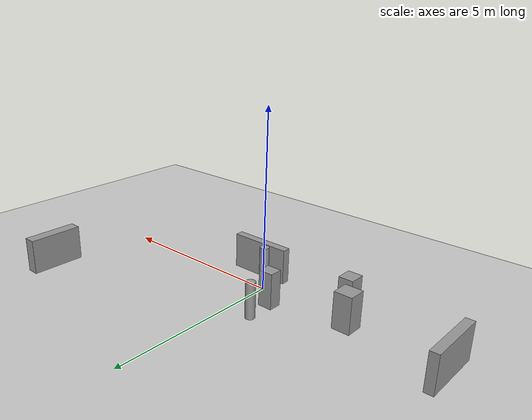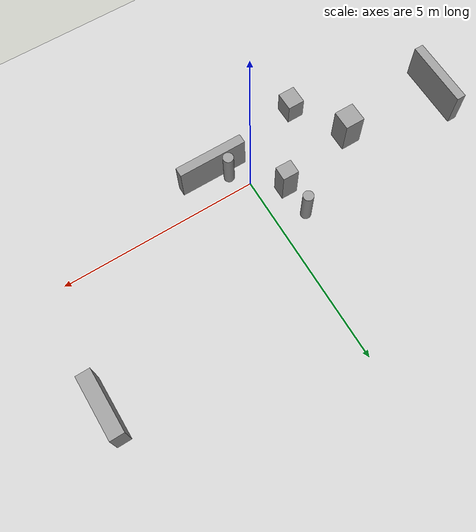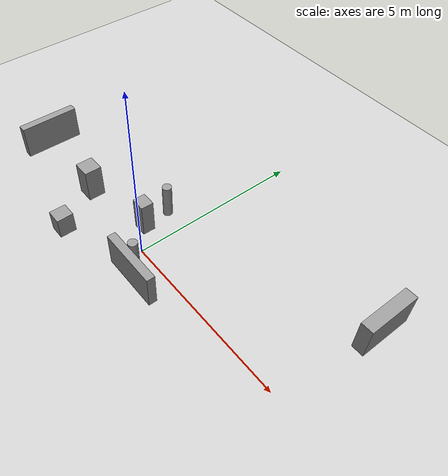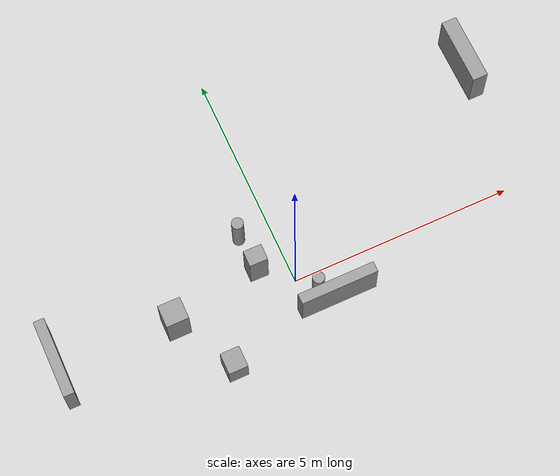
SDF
<sdf version="1.6">
 <world name="default">
  <model name="ground_plane">
   <static>1</static>
   <link name="link">
    <collision name="collision">
     <geometry><plane><normal>0 0 1</normal><size>100 100</size></plane></geometry>
     <surface><friction><ode><mu>100</mu><mu2>50</mu2></ode></friction></surface>
    </collision>
    <visual name="visual">
     <cast_shadows>0</cast_shadows>
     <geometry><plane><normal>0 0 1</normal><size>100 100</size></plane></geometry>
     <material>
      <script><uri>file://media/materials/scripts/gazebo.material</uri><name>Gazebo/Grey</name></script>
     </material>
    </visual>
   </link>
  </model>
  <model name="cma_armario">
   <link name="link_0">
    <pose>1.32157 0.885178 0.5 0 -0 0</pose>
    <inertial>
     <mass>0.402376</mass>
     <inertia>
      <ixx>0.0353686</ixx>
      <ixy>0</ixy>
      <ixz>0</ixz>
      <iyy>0.132616</iyy>
      <iyz>0</iyz>
      <izz>0.100922</izz>
     </inertia>
    </inertial>
    <visual name="visual">
     <geometry><box><size>1.71877 0.234069 1</size></box></geometry>
     <material>
      <lighting>1</lighting>
      <script><uri>file://media/materials/scripts/gazebo.material</uri><name>Gazebo/Grey</name></script>
      <ambient>0.3 0.3 0.3 1</ambient>
      <diffuse>0.7 0.7 0.7 1</diffuse>
      <specular>0.01 0.01 0.01 1</specular>
      <emissive>0 0 0 1</emissive>
     </material>
    </visual>
    <collision name="collision">
     <geometry><box><size>1.71877 0.234069 1</size></box></geometry>
     <surface>
      <friction>
       <ode><mu>1</mu><mu2>1</mu2><fdir1>0 0 0</fdir1><slip1>0</slip1><slip2>0</slip2></ode>
       <torsional>
        <coefficient>1</coefficient>
        <patch_radius>0</patch_radius>
        <surface_radius>0</surface_radius>
        <use_patch_radius>1</use_patch_radius>
        <ode><slip>0</slip></ode>
       </torsional>
      </friction>
      <bounce><restitution_coefficient>0</restitution_coefficient><threshold>1e+06</threshold></bounce>
      <contact>
       <collide_without_contact>0</collide_without_contact>
       <collide_without_contact_bitmask>1</collide_without_contact_bitmask>
       <collide_bitmask>1</collide_bitmask>
       <ode>
        <soft_cfm>0</soft_cfm>
        <soft_erp>0.2</soft_erp>
        <kp>1e+13</kp>
        <kd>1</kd>
        <max_vel>0.01</max_vel>
        <min_depth>0</min_depth>
       </ode>
       <bullet>
        <split_impulse>1</split_impulse>
        <split_impulse_penetration_threshold>-0.01</split_impulse_penetration_threshold>
        <soft_cfm>0</soft_cfm>
        <soft_erp>0.2</soft_erp>
        <kp>1e+13</kp>
        <kd>1</kd>
       </bullet>
      </contact>
     </surface>
    </collision>
   </link>
   <static>0</static>
   <pose>-0.670284 -1.58228 1e-06 -2e-06 -0 -0.000244</pose>
  </model>
  <model name="cma_lixo">
   <link name="link_1">
    <pose>0.882962 1.81586 0.5 0 -0 0</pose>
    <inertial>
     <mass>0.0687644</mass>
     <inertia>
      <ixx>0.00602588</ixx>
      <ixy>0</ixy>
      <ixz>0</ixz>
      <iyy>0.00602588</iyy>
      <iyz>0</iyz>
      <izz>0.000591068</izz>
     </inertia>
    </inertial>
    <visual name="visual">
     <geometry><cylinder><radius>0.131112</radius><length>1</length></cylinder></geometry>
     <material>
      <lighting>1</lighting>
      <script><uri>file://media/materials/scripts/gazebo.material</uri><name>Gazebo/Grey</name></script>
      <ambient>0.3 0.3 0.3 1</ambient>
      <diffuse>0.7 0.7 0.7 1</diffuse>
      <specular>0.01 0.01 0.01 1</specular>
      <emissive>0 0 0 1</emissive>
     </material>
    </visual>
    <collision name="collision">
     <geometry><cylinder><radius>0.131112</radius><length>1</length></cylinder></geometry>
     <surface>
      <friction>
       <ode><mu>1</mu><mu2>1</mu2><fdir1>0 0 0</fdir1><slip1>0</slip1><slip2>0</slip2></ode>
       <torsional>
        <coefficient>1</coefficient>
        <patch_radius>0</patch_radius>
        <surface_radius>0</surface_radius>
        <use_patch_radius>1</use_patch_radius>
        <ode><slip>0</slip></ode>
       </torsional>
      </friction>
      <bounce><restitution_coefficient>0</restitution_coefficient><threshold>1e+06</threshold></bounce>
      <contact>
       <collide_without_contact>0</collide_without_contact>
       <collide_without_contact_bitmask>1</collide_without_contact_bitmask>
       <collide_bitmask>1</collide_bitmask>
       <ode>
        <soft_cfm>0</soft_cfm>
        <soft_erp>0.2</soft_erp>
        <kp>1e+13</kp>
        <kd>1</kd>
        <max_vel>0.01</max_vel>
        <min_depth>0</min_depth>
       </ode>
       <bullet>
        <split_impulse>1</split_impulse>
        <split_impulse_penetration_threshold>-0.01</split_impulse_penetration_threshold>
        <soft_cfm>0</soft_cfm>
        <soft_erp>0.2</soft_erp>
        <kp>1e+13</kp>
        <kd>1</kd>
       </bullet>
      </contact>
     </surface>
    </collision>
   </link>
   <static>0</static>
   <pose>-1.35785 -1.52544 -5e-06 0 0 -0.543097</pose>
  </model>
  <model name="cma_lixo_0">
   <link name="link_1">
    <pose>0.882962 1.81586 0.5 0 -0 0</pose>
    <inertial>
     <mass>0.0687644</mass>
     <inertia>
      <ixx>0.00602588</ixx>
      <ixy>0</ixy>
      <ixz>0</ixz>
      <iyy>0.00602588</iyy>
      <iyz>0</iyz>
      <izz>0.000591068</izz>
     </inertia>
    </inertial>
    <visual name="visual">
     <geometry><cylinder><radius>0.131112</radius><length>1</length></cylinder></geometry>
     <material>
      <lighting>1</lighting>
      <script><uri>file://media/materials/scripts/gazebo.material</uri><name>Gazebo/Grey</name></script>
      <ambient>0.3 0.3 0.3 1</ambient>
      <diffuse>0.7 0.7 0.7 1</diffuse>
      <specular>0.01 0.01 0.01 1</specular>
      <emissive>0 0 0 1</emissive>
     </material>
    </visual>
    <collision name="collision">
     <geometry><cylinder><radius>0.131112</radius><length>1</length></cylinder></geometry>
     <surface>
      <friction>
       <ode><mu>1</mu><mu2>1</mu2><fdir1>0 0 0</fdir1><slip1>0</slip1><slip2>0</slip2></ode>
       <torsional>
        <coefficient>1</coefficient>
        <patch_radius>0</patch_radius>
        <surface_radius>0</surface_radius>
        <use_patch_radius>1</use_patch_radius>
        <ode><slip>0</slip></ode>
       </torsional>
      </friction>
      <bounce><restitution_coefficient>0</restitution_coefficient><threshold>1e+06</threshold></bounce>
      <contact>
       <collide_without_contact>0</collide_without_contact>
       <collide_without_contact_bitmask>1</collide_without_contact_bitmask>
       <collide_bitmask>1</collide_bitmask>
       <ode>
        <soft_cfm>0</soft_cfm>
        <soft_erp>0.2</soft_erp>
        <kp>1e+13</kp>
        <kd>1</kd>
        <max_vel>0.01</max_vel>
        <min_depth>0</min_depth>
       </ode>
       <bullet>
        <split_impulse>1</split_impulse>
        <split_impulse_penetration_threshold>-0.01</split_impulse_penetration_threshold>
        <soft_cfm>0</soft_cfm>
        <soft_erp>0.2</soft_erp>
        <kp>1e+13</kp>
        <kd>1</kd>
       </bullet>
      </contact>
     </surface>
    </collision>
   </link>
   <static>0</static>
   <pose>-1.60935 -0.442731 -7e-06 0 0 -0.009777</pose>
  </model>
  <model name="cma_bau_s">
   <link name="link_1">
    <pose>0.109594 0.272293 0 0 -0 0</pose>
    <inertial>
     <mass>0.125479</mass>
     <inertia>
      <ixx>0.00641943</ixx>
      <ixy>0</ixy>
      <ixz>0</ixz>
      <iyy>0.0059754</iyy>
      <iyz>0</iyz>
      <izz>0.00422085</izz>
     </inertia>
    </inertial>
    <visual name="visual">
     <geometry><box><size>0.424964 0.472283 0.625118</size></box></geometry>
     <material>
      <lighting>1</lighting>
      <script><uri>file://media/materials/scripts/gazebo.material</uri><name>Gazebo/Grey</name></script>
      <ambient>0.3 0.3 0.3 1</ambient>
      <diffuse>0.7 0.7 0.7 1</diffuse>
      <specular>0.01 0.01 0.01 1</specular>
      <emissive>0 0 0 1</emissive>
     </material>
    </visual>
    <collision name="collision">
     <geometry><box><size>0.424964 0.472283 0.625118</size></box></geometry>
     <surface>
      <friction>
       <ode><mu>1</mu><mu2>1</mu2><fdir1>0 0 0</fdir1><slip1>0</slip1><slip2>0</slip2></ode>
       <torsional>
        <coefficient>1</coefficient>
        <patch_radius>0</patch_radius>
        <surface_radius>0</surface_radius>
        <use_patch_radius>1</use_patch_radius>
        <ode><slip>0</slip></ode>
       </torsional>
      </friction>
      <bounce><restitution_coefficient>0</restitution_coefficient><threshold>1e+06</threshold></bounce>
      <contact>
       <collide_without_contact>0</collide_without_contact>
       <collide_without_contact_bitmask>1</collide_without_contact_bitmask>
       <collide_bitmask>1</collide_bitmask>
       <ode>
        <soft_cfm>0</soft_cfm>
        <soft_erp>0.2</soft_erp>
        <kp>1e+13</kp>
        <kd>1</kd>
        <max_vel>0.01</max_vel>
        <min_depth>0</min_depth>
       </ode>
       <bullet>
        <split_impulse>1</split_impulse>
        <split_impulse_penetration_threshold>-0.01</split_impulse_penetration_threshold>
        <soft_cfm>0</soft_cfm>
        <soft_erp>0.2</soft_erp>
        <kp>1e+13</kp>
        <kd>1</kd>
       </bullet>
      </contact>
     </surface>
    </collision>
   </link>
   <static>0</static>
   <pose>-2.04277 -1.4857 0.312559 0 -0 0.000792</pose>
  </model>
  <model name="cma_gaveteiro_1">
   <link name="link_0">
    <pose>-0 4e-06 0 0 -0 0</pose>
    <inertial>
     <mass>0.245086</mass>
     <inertia>
      <ixx>0.025418</ixx>
      <ixy>0</ixy>
      <ixz>0</ixz>
      <iyy>0.0254411</iyy>
      <iyz>0</iyz>
      <izz>0.0100113</izz>
     </inertia>
    </inertial>
    <visual name="visual">
     <geometry><box><size>0.495657 0.494491 1</size></box></geometry>
     <material>
      <lighting>1</lighting>
      <script><uri>file://media/materials/scripts/gazebo.material</uri><name>Gazebo/Grey</name></script>
      <ambient>0.3 0.3 0.3 1</ambient>
      <diffuse>0.7 0.7 0.7 1</diffuse>
      <specular>0.01 0.01 0.01 1</specular>
      <emissive>0 0 0 1</emissive>
     </material>
    </visual>
    <collision name="collision">
     <geometry><box><size>0.495657 0.494491 1</size></box></geometry>
     <surface>
      <friction>
       <ode><mu>1</mu><mu2>1</mu2><fdir1>0 0 0</fdir1><slip1>0</slip1><slip2>0</slip2></ode>
       <torsional>
        <coefficient>1</coefficient>
        <patch_radius>0</patch_radius>
        <surface_radius>0</surface_radius>
        <use_patch_radius>1</use_patch_radius>
        <ode><slip>0</slip></ode>
       </torsional>
      </friction>
      <bounce><restitution_coefficient>0</restitution_coefficient><threshold>1e+06</threshold></bounce>
      <contact>
       <collide_without_contact>0</collide_without_contact>
       <collide_without_contact_bitmask>1</collide_without_contact_bitmask>
       <collide_bitmask>1</collide_bitmask>
       <ode>
        <soft_cfm>0</soft_cfm>
        <soft_erp>0.2</soft_erp>
        <kp>1e+13</kp>
        <kd>1</kd>
        <max_vel>0.01</max_vel>
        <min_depth>0</min_depth>
       </ode>
       <bullet>
        <split_impulse>1</split_impulse>
        <split_impulse_penetration_threshold>-0.01</split_impulse_penetration_threshold>
        <soft_cfm>0</soft_cfm>
        <soft_erp>0.2</soft_erp>
        <kp>1e+13</kp>
        <kd>1</kd>
       </bullet>
      </contact>
     </surface>
    </collision>
   </link>
   <static>0</static>
   <pose>-2.68859 0.131632 0.499998 8e-06 0 -0.000427</pose>
  </model>
  <model name="cma_armario_7">
   <link name="link_0">
    <pose>1.32157 0.885178 0.5 0 -0 0</pose>
    <inertial>
     <mass>0.402376</mass>
     <inertia>
      <ixx>0.0353686</ixx>
      <ixy>0</ixy>
      <ixz>0</ixz>
      <iyy>0.132616</iyy>
      <iyz>0</iyz>
      <izz>0.100922</izz>
     </inertia>
    </inertial>
    <visual name="visual">
     <geometry><box><size>1.71877 0.234069 1</size></box></geometry>
     <material>
      <lighting>1</lighting>
      <script><uri>file://media/materials/scripts/gazebo.material</uri><name>Gazebo/Grey</name></script>
      <ambient>0.3 0.3 0.3 1</ambient>
      <diffuse>0.7 0.7 0.7 1</diffuse>
      <specular>0.01 0.01 0.01 1</specular>
      <emissive>0 0 0 1</emissive>
     </material>
    </visual>
    <collision name="collision">
     <geometry><box><size>1.71877 0.234069 1</size></box></geometry>
     <surface>
      <friction>
       <ode><mu>1</mu><mu2>1</mu2><fdir1>0 0 0</fdir1><slip1>0</slip1><slip2>0</slip2></ode>
       <torsional>
        <coefficient>1</coefficient>
        <patch_radius>0</patch_radius>
        <surface_radius>0</surface_radius>
        <use_patch_radius>1</use_patch_radius>
        <ode><slip>0</slip></ode>
       </torsional>
      </friction>
      <bounce><restitution_coefficient>0</restitution_coefficient><threshold>1e+06</threshold></bounce>
      <contact>
       <collide_without_contact>0</collide_without_contact>
       <collide_without_contact_bitmask>1</collide_without_contact_bitmask>
       <collide_bitmask>1</collide_bitmask>
       <ode>
        <soft_cfm>0</soft_cfm>
        <soft_erp>0.2</soft_erp>
        <kp>1e+13</kp>
        <kd>1</kd>
        <max_vel>0.01</max_vel>
        <min_depth>0</min_depth>
       </ode>
       <bullet>
        <split_impulse>1</split_impulse>
        <split_impulse_penetration_threshold>-0.01</split_impulse_penetration_threshold>
        <soft_cfm>0</soft_cfm>
        <soft_erp>0.2</soft_erp>
        <kp>1e+13</kp>
        <kd>1</kd>
       </bullet>
      </contact>
     </surface>
    </collision>
   </link>
   <static>0</static>
   <pose>-4.38634 -1.06628 0 0 -0 1.56744</pose>
  </model>
  <model name="cma_gaveteiro_pequeno_e">
   <link name="link_1">
    <pose>1e-06 -3e-06 0 0 -0 0</pose>
    <inertial>
     <mass>0.145532</mass>
     <inertia>
      <ixx>0.0136813</ixx>
      <ixy>0</ixy>
      <ixz>0</ixz>
      <iyy>0.0141327</iyy>
      <iyz>0</iyz>
      <izz>0.00355866</izz>
     </inertia>
    </inertial>
    <visual name="visual">
     <geometry><box><size>0.4066 0.357918 1</size></box></geometry>
     <material>
      <lighting>1</lighting>
      <script><uri>file://media/materials/scripts/gazebo.material</uri><name>Gazebo/Grey</name></script>
      <ambient>0.3 0.3 0.3 1</ambient>
      <diffuse>0.7 0.7 0.7 1</diffuse>
      <specular>0.01 0.01 0.01 1</specular>
      <emissive>0 0 0 1</emissive>
     </material>
    </visual>
    <collision name="collision">
     <geometry><box><size>0.4066 0.357918 1</size></box></geometry>
     <surface>
      <friction>
       <ode><mu>1</mu><mu2>1</mu2><fdir1>0 0 0</fdir1><slip1>0</slip1><slip2>0</slip2></ode>
       <torsional>
        <coefficient>1</coefficient>
        <patch_radius>0</patch_radius>
        <surface_radius>0</surface_radius>
        <use_patch_radius>1</use_patch_radius>
        <ode><slip>0</slip></ode>
       </torsional>
      </friction>
      <bounce><restitution_coefficient>0</restitution_coefficient><threshold>1e+06</threshold></bounce>
      <contact>
       <collide_without_contact>0</collide_without_contact>
       <collide_without_contact_bitmask>1</collide_without_contact_bitmask>
       <collide_bitmask>1</collide_bitmask>
       <ode>
        <soft_cfm>0</soft_cfm>
        <soft_erp>0.2</soft_erp>
        <kp>1e+13</kp>
        <kd>1</kd>
        <max_vel>0.01</max_vel>
        <min_depth>0</min_depth>
       </ode>
       <bullet>
        <split_impulse>1</split_impulse>
        <split_impulse_penetration_threshold>-0.01</split_impulse_penetration_threshold>
        <soft_cfm>0</soft_cfm>
        <soft_erp>0.2</soft_erp>
        <kp>1e+13</kp>
        <kd>1</kd>
       </bullet>
      </contact>
     </surface>
    </collision>
   </link>
   <static>0</static>
   <pose>-0.653078 0.558732 0.500001 1e-06 3e-06 -0.015386</pose>
  </model>
  <model name="cma_armario_coz_150x20cm">
   <link name="link_1">
    <pose>7.18686 2.75247 0.5 0 -0 0</pose>
    <inertial>
     <mass>0.531573</mass>
     <inertia>
      <ixx>0.147651</ixx>
      <ixy>0</ixy>
      <ixz>0</ixz>
      <iyy>0.0496628</iyy>
      <iyz>0</iyz>
      <izz>0.108718</izz>
     </inertia>
    </inertial>
    <visual name="visual">
     <geometry><box><size>0.348023 1.52746 1</size></box></geometry>
     <material>
      <lighting>1</lighting>
      <script><uri>file://media/materials/scripts/gazebo.material</uri><name>Gazebo/Grey</name></script>
      <ambient>0.3 0.3 0.3 1</ambient>
      <diffuse>0.7 0.7 0.7 1</diffuse>
      <specular>0.01 0.01 0.01 1</specular>
      <emissive>0 0 0 1</emissive>
     </material>
    </visual>
    <collision name="collision">
     <geometry><box><size>0.348023 1.52746 1</size></box></geometry>
     <surface>
      <friction>
       <ode><mu>1</mu><mu2>1</mu2><fdir1>0 0 0</fdir1><slip1>0</slip1><slip2>0</slip2></ode>
       <torsional>
        <coefficient>1</coefficient>
        <patch_radius>0</patch_radius>
        <surface_radius>0</surface_radius>
        <use_patch_radius>1</use_patch_radius>
        <ode><slip>0</slip></ode>
       </torsional>
      </friction>
      <bounce><restitution_coefficient>0</restitution_coefficient><threshold>1e+06</threshold></bounce>
      <contact>
       <collide_without_contact>0</collide_without_contact>
       <collide_without_contact_bitmask>1</collide_without_contact_bitmask>
       <collide_bitmask>1</collide_bitmask>
       <ode>
        <soft_cfm>0</soft_cfm>
        <soft_erp>0.2</soft_erp>
        <kp>1e+13</kp>
        <kd>1</kd>
        <max_vel>0.01</max_vel>
        <min_depth>0</min_depth>
       </ode>
       <bullet>
        <split_impulse>1</split_impulse>
        <split_impulse_penetration_threshold>-0.01</split_impulse_penetration_threshold>
        <soft_cfm>0</soft_cfm>
        <soft_erp>0.2</soft_erp>
        <kp>1e+13</kp>
        <kd>1</kd>
       </bullet>
      </contact>
     </surface>
    </collision>
   </link>
   <static>0</static>
   <pose>-1.72994 0.259181 0 0 -0 0.002956</pose>
  </model>
 </world>
</sdf>
